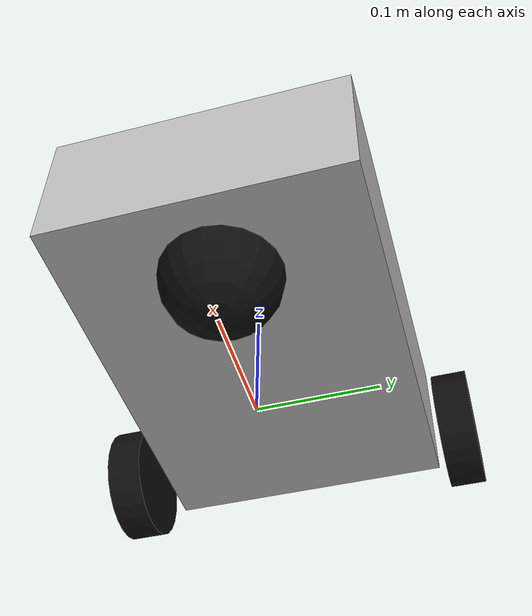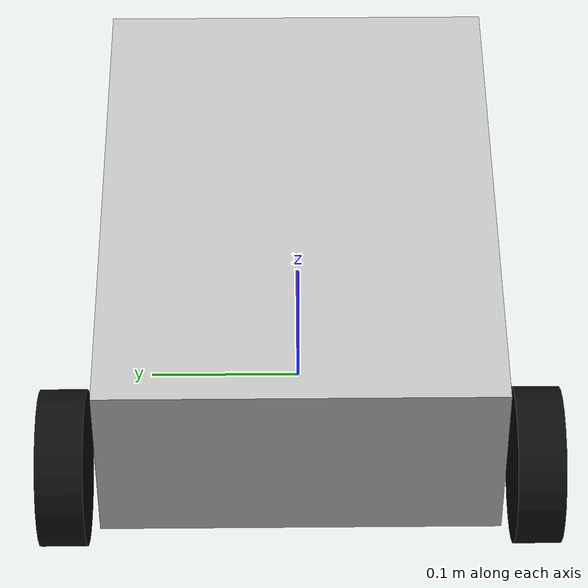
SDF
<sdf version="1.9">
  <model name="my_robot">
    <pose>0 0 0 0 0 0</pose>

    <!-- BASE -->
    <link name="base_link">
      <!-- base_link merkezini yerden yukarı al: base_height/2 + wheel_radius = 0.06 + 0.05 = 0.11 -->
      <pose>0 0 0.11 0 0 0</pose>

      <inertial>
        <mass>8.0</mass>
        <inertia>
          <ixx>0.10</ixx><iyy>0.10</iyy><izz>0.10</izz>
          <ixy>0</ixy><ixz>0</ixz><iyz>0</iyz>
        </inertia>
      </inertial>

      <!-- Görsel gövde -->
      <visual name="base_visual">
        <geometry>
          <box><size>0.35 0.25 0.12</size></box>
        </geometry>
        <material>
          <ambient>0.3 0.3 0.3 1</ambient>
          <diffuse>0.75 0.75 0.75 1</diffuse>
        </material>
      </visual>

      <!-- ÇARPIŞMA gövdesini biraz yukarı alıyoruz ki tekerle çakışmasın -->
      <collision name="base_collision">
        <pose>0 0 0.05 0 0 0</pose>
        <geometry>
          <box><size>0.35 0.25 0.10</size></box>
        </geometry>
        <surface>
          <bounce><restitution_coefficient>0.0</restitution_coefficient></bounce>
        </surface>
      </collision>
    </link>

    <!-- LEFT WHEEL -->
    <link name="left_wheel_link">
      <!-- Wheel merkezini base_link'e göre konumlandır: x arkada, y sol, z aşağı -->
      <pose relative_to="base_link">-0.125 0.15 -0.06 0 0 0</pose>

      <inertial>
        <mass>1.0</mass>
        <inertia>
          <ixx>0.005</ixx><iyy>0.005</iyy><izz>0.005</izz>
          <ixy>0</ixy><ixz>0</ixz><iyz>0</iyz>
        </inertia>
      </inertial>

      <collision name="left_wheel_collision">
        <!-- silindiri teker gibi yap: pi/2 roll -->
        <pose>0 0 0 1.5708 0 0</pose>
        <geometry><cylinder><radius>0.05</radius><length>0.03</length></cylinder></geometry>
        <surface>
          <friction>
            <ode>
              <mu>1.2</mu>
              <mu2>1.2</mu2>
            </ode>
          </friction>
          <bounce><restitution_coefficient>0.0</restitution_coefficient></bounce>
        </surface>
      </collision>

      <visual name="left_wheel_visual">
        <pose>0 0 0 1.5708 0 0</pose>
        <geometry><cylinder><radius>0.05</radius><length>0.03</length></cylinder></geometry>
        <material>
          <ambient>0.02 0.02 0.02 1</ambient>
          <diffuse>0.05 0.05 0.05 1</diffuse>
        </material>
      </visual>
    </link>

    <!-- RIGHT WHEEL -->
    <link name="right_wheel_link">
      <pose relative_to="base_link">-0.125 -0.15 -0.06 0 0 0</pose>

      <inertial>
        <mass>1.0</mass>
        <inertia>
          <ixx>0.005</ixx><iyy>0.005</iyy><izz>0.005</izz>
          <ixy>0</ixy><ixz>0</ixz><iyz>0</iyz>
        </inertia>
      </inertial>

      <collision name="right_wheel_collision">
        <pose>0 0 0 1.5708 0 0</pose>
        <geometry><cylinder><radius>0.05</radius><length>0.03</length></cylinder></geometry>
        <surface>
          <friction>
            <ode>
              <mu>1.2</mu>
              <mu2>1.2</mu2>
            </ode>
          </friction>
          <bounce><restitution_coefficient>0.0</restitution_coefficient></bounce>
        </surface>
      </collision>

      <visual name="right_wheel_visual">
        <pose>0 0 0 1.5708 0 0</pose>
        <geometry><cylinder><radius>0.05</radius><length>0.03</length></cylinder></geometry>
        <material>
          <ambient>0.02 0.02 0.02 1</ambient>
          <diffuse>0.05 0.05 0.05 1</diffuse>
        </material>
      </visual>
    </link>

    <!-- CASTER (biraz daha geride) -->
    <link name="caster_link">
      <!-- önce 0.145'ti; 0.10 yaptım (geriye) -->
      <pose relative_to="base_link">0.10 0 -0.06 0 0 0</pose>

      <inertial>
        <mass>0.3</mass>
        <inertia>
          <ixx>0.001</ixx><iyy>0.001</iyy><izz>0.001</izz>
          <ixy>0</ixy><ixz>0</ixz><iyz>0</iyz>
        </inertia>
      </inertial>

      <collision name="caster_collision">
        <geometry><sphere><radius>0.05</radius></sphere></geometry>
        <surface>
          <!-- caster daha kaygan olsun -->
          <friction>
            <ode>
              <mu>0.2</mu>
              <mu2>0.2</mu2>
            </ode>
          </friction>
          <bounce><restitution_coefficient>0.0</restitution_coefficient></bounce>
        </surface>
      </collision>

      <visual name="caster_visual">
        <geometry><sphere><radius>0.05</radius></sphere></geometry>
        <material>
          <ambient>0.02 0.02 0.02 1</ambient>
          <diffuse>0.05 0.05 0.05 1</diffuse>
        </material>
      </visual>
    </link>

    <!-- JOINTS -->
    <joint name="left_wheel_joint" type="revolute">
      <parent>base_link</parent>
      <child>left_wheel_link</child>
      <axis>
        <!-- teker mili Y ekseni -->
        <xyz>0 1 0</xyz>
        <limit><lower>-1e16</lower><upper>1e16</upper></limit>
      </axis>
    </joint>

    <joint name="right_wheel_joint" type="revolute">
      <parent>base_link</parent>
      <child>right_wheel_link</child>
      <axis>
        <xyz>0 1 0</xyz>
        <limit><lower>-1e16</lower><upper>1e16</upper></limit>
      </axis>
    </joint>

    <joint name="caster_joint" type="fixed">
      <parent>base_link</parent>
      <child>caster_link</child>
    </joint>

    <!-- LIDAR -->
    <link name="laser_link">
      <pose relative_to="base_link">0.12 0 0.11 0 0 0</pose>
      <sensor name="lidar" type="gpu_lidar">
        <always_on>true</always_on>
        <update_rate>10</update_rate>
        <topic>/scan</topic>

        <!-- Gerçek robot LIDAR özellikleri: RPLIDAR A2M12, max_range=12.0m, scan_frequency=10Hz -->
        <lidar>
          <scan>
            <horizontal>
              <samples>720</samples>
              <min_angle>-3.14159</min_angle>
              <max_angle>3.14159</max_angle>
            </horizontal>
          </scan>
          <range>
            <min>0.15</min>  <!-- Gerçek robot: RPLIDAR A2M12 min range (0.12 -> 0.15) -->
            <max>12.0</max>  <!-- Gerçek robot: RPLIDAR A2M12 max range (8.0 -> 12.0) -->
            <resolution>0.01</resolution>
          </range>
        </lidar>
      </sensor>
    </link>

    <!-- DIFF DRIVE -->
    <!-- Gerçek robot özellikleri: wheel_separation=0.43m, wheel_radius=0.050m (controller) -->
    <plugin filename="gz-sim-diff-drive-system" name="gz::sim::systems::DiffDrive">
      <left_joint>left_wheel_joint</left_joint>
      <right_joint>right_wheel_joint</right_joint>

      <wheel_separation>0.43</wheel_separation>  <!-- Gerçek robot: 0.43m (0.30 -> 0.43) -->
      <wheel_radius>0.05</wheel_radius>  <!-- Gerçek robot: 0.050m (controller için) -->

      <topic>/cmd_vel</topic>
      <odom_topic>/odom</odom_topic>

      <frame_id>odom</frame_id>
      <child_frame_id>base_footprint</child_frame_id>

      <tf_topic>/tf</tf_topic>
      <odom_publisher_frequency>30</odom_publisher_frequency>
    </plugin>

    <plugin
      filename="gz-sim-sensors-system"
      name="gz::sim::systems::Sensors">
      <render_engine>ogre2</render_engine>
    </plugin>

  </model>
</sdf>
